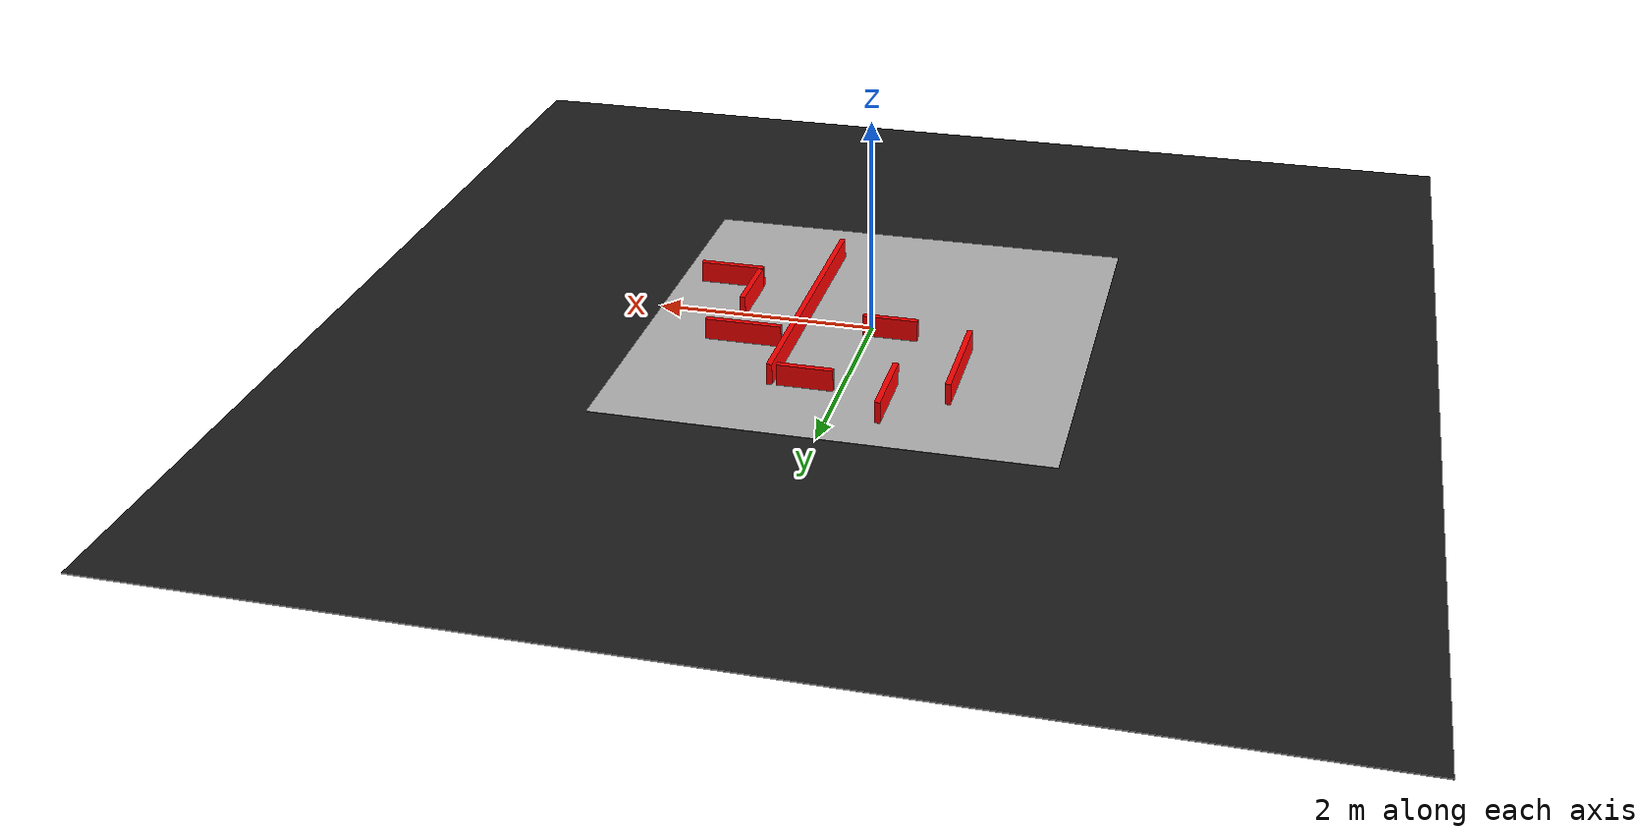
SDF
<sdf version="1.6">
 <world name="default">
  <scene>
   <ambient>0.8 0.8 0.8 1</ambient>
   <shadows>0</shadows>
   <grid>0</grid>
   <background>0.7 0.7 0.7 1</background>
  </scene>
  <include><uri>model://turtlebot3_track/course</uri><pose>0  0 0 0 0 -3.14</pose></include>
  <light name="sun" type="directional">
   <pose>0 0 10 0 -0 0</pose>
   <diffuse>0.8 0.8 0.8 1</diffuse>
   <specular>0.1 0.1 0.1 1</specular>
   <attenuation>
    <range>1000</range>
    <constant>0.9</constant>
    <linear>0.01</linear>
    <quadratic>0.001</quadratic>
   </attenuation>
   <direction>-0.5 0.5 -1</direction>
  </light>
  <model name="ground2">
   <pose>0 0 -0.1 0 -0 0</pose>
   <static>1</static>
   <link name="ground">
    <collision name="ground_coll"><geometry><box><size>8 8 0.01</size></box></geometry></collision>
    <visual name="ground_vis">
     <geometry><box><size>10 10 0.01</size></box></geometry>
     <material>
      <script><uri>file://media/materials/scripts/gazebo.material</uri><name>Gazebo/FlatBlack</name></script>
     </material>
    </visual>
   </link>
  </model>
  <model name="wall">
   <scale>1 1 1</scale>
   <link name="wall_link">
    <pose>-1.91548 -1.005857 0 0 -0 1.5708</pose>
    <velocity>0 0 0 0 -0 0</velocity>
    <acceleration>0 0 0 0 -0 0</acceleration>
    <wrench>0 0 0 0 -0 0</wrench>
   </link>
  </model>
  <model name="wall_1">
   <link name="wall_link">
    <pose>0 0  0 0 -0 1.57</pose>
    <visual name="Wall_1_Visual">
     <geometry><box><size>0.05 0.6 0.4</size></box></geometry>
     <material>
      <ambient>1 0 0 1</ambient>
      <diffuse>1 0 0 1</diffuse>
      <specular>0.1 0.1 0.1 1</specular>
      <emissive>0 0 0 1</emissive>
     </material>
    </visual>
    <collision name="Wall_1_Collision">
     <geometry><box><size>0.05 0.6 0.4</size></box></geometry>
     <surface>
      <friction>
       <ode><mu>1</mu><mu2>1</mu2><fdir1>0 0 0</fdir1><slip1>0</slip1><slip2>0</slip2></ode>
       <torsional>
        <coefficient>1</coefficient>
        <patch_radius>0</patch_radius>
        <surface_radius>0</surface_radius>
        <use_patch_radius>1</use_patch_radius>
        <ode><slip>0</slip></ode>
       </torsional>
      </friction>
      <bounce><restitution_coefficient>0</restitution_coefficient><threshold>1e+06</threshold></bounce>
      <contact>
       <collide_without_contact>0</collide_without_contact>
       <collide_without_contact_bitmask>1</collide_without_contact_bitmask>
       <collide_bitmask>1</collide_bitmask>
       <ode>
        <soft_cfm>0</soft_cfm>
        <soft_erp>0.2</soft_erp>
        <kp>1e+13</kp>
        <kd>1</kd>
        <max_vel>0.01</max_vel>
        <min_depth>0</min_depth>
       </ode>
       <bullet>
        <split_impulse>1</split_impulse>
        <split_impulse_penetration_threshold>-0.01</split_impulse_penetration_threshold>
        <soft_cfm>0</soft_cfm>
        <soft_erp>0.2</soft_erp>
        <kp>1e+13</kp>
        <kd>1</kd>
       </bullet>
      </contact>
     </surface>
    </collision>
   </link>
   <static>1</static>
   <pose>1.49 -0.61 0 0 -0 0</pose>
  </model>
  <model name="wall_2">
   <link name="wall_link">
    <pose>0 0  0 0 -0 1.57</pose>
    <visual name="Wall_2_Visual">
     <geometry><box><size>0.05 2.6 0.4</size></box></geometry>
     <material>
      <ambient>1 0 0 1</ambient>
      <diffuse>1 0 0 1</diffuse>
      <specular>0.1 0.1 0.1 1</specular>
      <emissive>0 0 0 1</emissive>
     </material>
    </visual>
    <collision name="Wall_2_Collision">
     <geometry><box><size>0.05 2.6 0.4</size></box></geometry>
     <surface>
      <friction>
       <ode><mu>1</mu><mu2>1</mu2><fdir1>0 0 0</fdir1><slip1>0</slip1><slip2>0</slip2></ode>
       <torsional>
        <coefficient>1</coefficient>
        <patch_radius>0</patch_radius>
        <surface_radius>0</surface_radius>
        <use_patch_radius>1</use_patch_radius>
        <ode><slip>0</slip></ode>
       </torsional>
      </friction>
      <bounce><restitution_coefficient>0</restitution_coefficient><threshold>1e+06</threshold></bounce>
      <contact>
       <collide_without_contact>0</collide_without_contact>
       <collide_without_contact_bitmask>1</collide_without_contact_bitmask>
       <collide_bitmask>1</collide_bitmask>
       <ode>
        <soft_cfm>0</soft_cfm>
        <soft_erp>0.2</soft_erp>
        <kp>1e+13</kp>
        <kd>1</kd>
        <max_vel>0.01</max_vel>
        <min_depth>0</min_depth>
       </ode>
       <bullet>
        <split_impulse>1</split_impulse>
        <split_impulse_penetration_threshold>-0.01</split_impulse_penetration_threshold>
        <soft_cfm>0</soft_cfm>
        <soft_erp>0.2</soft_erp>
        <kp>1e+13</kp>
        <kd>1</kd>
       </bullet>
      </contact>
     </surface>
    </collision>
   </link>
   <static>1</static>
   <pose>0.62 -0.09 0 0 -0 1.57</pose>
  </model>
  <model name="wall_3">
   <link name="wall_link">
    <pose>0 0  0 0 -0 1.57</pose>
    <visual name="Wall_3_Visual">
     <geometry><box><size>0.05 0.6 0.4</size></box></geometry>
     <material>
      <ambient>1 0 0 1</ambient>
      <diffuse>1 0 0 1</diffuse>
      <specular>0.1 0.1 0.1 1</specular>
      <emissive>0 0 0 1</emissive>
     </material>
    </visual>
    <collision name="Wall_3_Collision">
     <geometry><box><size>0.05 0.6 0.4</size></box></geometry>
     <surface>
      <friction>
       <ode><mu>1</mu><mu2>1</mu2><fdir1>0 0 0</fdir1><slip1>0</slip1><slip2>0</slip2></ode>
       <torsional>
        <coefficient>1</coefficient>
        <patch_radius>0</patch_radius>
        <surface_radius>0</surface_radius>
        <use_patch_radius>1</use_patch_radius>
        <ode><slip>0</slip></ode>
       </torsional>
      </friction>
      <bounce><restitution_coefficient>0</restitution_coefficient><threshold>1e+06</threshold></bounce>
      <contact>
       <collide_without_contact>0</collide_without_contact>
       <collide_without_contact_bitmask>1</collide_without_contact_bitmask>
       <collide_bitmask>1</collide_bitmask>
       <ode>
        <soft_cfm>0</soft_cfm>
        <soft_erp>0.2</soft_erp>
        <kp>1e+13</kp>
        <kd>1</kd>
        <max_vel>0.01</max_vel>
        <min_depth>0</min_depth>
       </ode>
       <bullet>
        <split_impulse>1</split_impulse>
        <split_impulse_penetration_threshold>-0.01</split_impulse_penetration_threshold>
        <soft_cfm>0</soft_cfm>
        <soft_erp>0.2</soft_erp>
        <kp>1e+13</kp>
        <kd>1</kd>
       </bullet>
      </contact>
     </surface>
    </collision>
   </link>
   <static>1</static>
   <pose>1.21 -0.27 0 0 -0 1.57</pose>
  </model>
  <model name="wall_4">
   <link name="wall_link">
    <pose>0 0  0 0 -0 1.57</pose>
    <visual name="Wall_4_Visual">
     <geometry><box><size>0.05 0.7 0.4</size></box></geometry>
     <material>
      <ambient>1 0 0 1</ambient>
      <diffuse>1 0 0 1</diffuse>
      <specular>0.1 0.1 0.1 1</specular>
      <emissive>0 0 0 1</emissive>
     </material>
    </visual>
    <collision name="Wall_4_Collision">
     <geometry><box><size>0.05 0.7 0.4</size></box></geometry>
     <surface>
      <friction>
       <ode><mu>1</mu><mu2>1</mu2><fdir1>0 0 0</fdir1><slip1>0</slip1><slip2>0</slip2></ode>
       <torsional>
        <coefficient>1</coefficient>
        <patch_radius>0</patch_radius>
        <surface_radius>0</surface_radius>
        <use_patch_radius>1</use_patch_radius>
        <ode><slip>0</slip></ode>
       </torsional>
      </friction>
      <bounce><restitution_coefficient>0</restitution_coefficient><threshold>1e+06</threshold></bounce>
      <contact>
       <collide_without_contact>0</collide_without_contact>
       <collide_without_contact_bitmask>1</collide_without_contact_bitmask>
       <collide_bitmask>1</collide_bitmask>
       <ode>
        <soft_cfm>0</soft_cfm>
        <soft_erp>0.2</soft_erp>
        <kp>1e+13</kp>
        <kd>1</kd>
        <max_vel>0.01</max_vel>
        <min_depth>0</min_depth>
       </ode>
       <bullet>
        <split_impulse>1</split_impulse>
        <split_impulse_penetration_threshold>-0.01</split_impulse_penetration_threshold>
        <soft_cfm>0</soft_cfm>
        <soft_erp>0.2</soft_erp>
        <kp>1e+13</kp>
        <kd>1</kd>
       </bullet>
      </contact>
     </surface>
    </collision>
   </link>
   <static>1</static>
   <pose>1.06 0.50 0 0 -0 0</pose>
  </model>
  <model name="wall_5">
   <link name="wall_link">
    <pose>0 0  0 0 -0 1.57</pose>
    <visual name="Wall_5_Visual">
     <geometry><box><size>0.05 0.7 0.4</size></box></geometry>
     <material>
      <ambient>1 0 0 1</ambient>
      <diffuse>1 0 0 1</diffuse>
      <specular>0.1 0.1 0.1 1</specular>
      <emissive>0 0 0 1</emissive>
     </material>
    </visual>
    <collision name="Wall_5_Collision">
     <geometry><box><size>0.05 0.7 0.4</size></box></geometry>
     <surface>
      <friction>
       <ode><mu>1</mu><mu2>1</mu2><fdir1>0 0 0</fdir1><slip1>0</slip1><slip2>0</slip2></ode>
       <torsional>
        <coefficient>1</coefficient>
        <patch_radius>0</patch_radius>
        <surface_radius>0</surface_radius>
        <use_patch_radius>1</use_patch_radius>
        <ode><slip>0</slip></ode>
       </torsional>
      </friction>
      <bounce><restitution_coefficient>0</restitution_coefficient><threshold>1e+06</threshold></bounce>
      <contact>
       <collide_without_contact>0</collide_without_contact>
       <collide_without_contact_bitmask>1</collide_without_contact_bitmask>
       <collide_bitmask>1</collide_bitmask>
       <ode>
        <soft_cfm>0</soft_cfm>
        <soft_erp>0.2</soft_erp>
        <kp>1e+13</kp>
        <kd>1</kd>
        <max_vel>0.01</max_vel>
        <min_depth>0</min_depth>
       </ode>
       <bullet>
        <split_impulse>1</split_impulse>
        <split_impulse_penetration_threshold>-0.01</split_impulse_penetration_threshold>
        <soft_cfm>0</soft_cfm>
        <soft_erp>0.2</soft_erp>
        <kp>1e+13</kp>
        <kd>1</kd>
       </bullet>
      </contact>
     </surface>
    </collision>
   </link>
   <static>1</static>
   <pose>-0.43 1.29 0 0 -0 1.57</pose>
  </model>
  <model name="wall_6">
   <link name="wall_link">
    <pose>0 0  0 0 -0 1.57</pose>
    <visual name="Wall_6_Visual">
     <geometry><box><size>0.05 0.5 0.4</size></box></geometry>
     <material>
      <ambient>1 0 0 1</ambient>
      <diffuse>1 0 0 1</diffuse>
      <specular>0.1 0.1 0.1 1</specular>
      <emissive>0 0 0 1</emissive>
     </material>
    </visual>
    <collision name="Wall_6_Collision">
     <geometry><box><size>0.05 0.5 0.4</size></box></geometry>
     <surface>
      <friction>
       <ode><mu>1</mu><mu2>1</mu2><fdir1>0 0 0</fdir1><slip1>0</slip1><slip2>0</slip2></ode>
       <torsional>
        <coefficient>1</coefficient>
        <patch_radius>0</patch_radius>
        <surface_radius>0</surface_radius>
        <use_patch_radius>1</use_patch_radius>
        <ode><slip>0</slip></ode>
       </torsional>
      </friction>
      <bounce><restitution_coefficient>0</restitution_coefficient><threshold>1e+06</threshold></bounce>
      <contact>
       <collide_without_contact>0</collide_without_contact>
       <collide_without_contact_bitmask>1</collide_without_contact_bitmask>
       <collide_bitmask>1</collide_bitmask>
       <ode>
        <soft_cfm>0</soft_cfm>
        <soft_erp>0.2</soft_erp>
        <kp>1e+13</kp>
        <kd>1</kd>
        <max_vel>0.01</max_vel>
        <min_depth>0</min_depth>
       </ode>
       <bullet>
        <split_impulse>1</split_impulse>
        <split_impulse_penetration_threshold>-0.01</split_impulse_penetration_threshold>
        <soft_cfm>0</soft_cfm>
        <soft_erp>0.2</soft_erp>
        <kp>1e+13</kp>
        <kd>1</kd>
       </bullet>
      </contact>
     </surface>
    </collision>
   </link>
   <static>1</static>
   <pose>0.31 1.18 0 0 -0 0</pose>
  </model>
  <model name="wall_7">
   <link name="wall_link">
    <pose>0 0  0 0 -0 1.57</pose>
    <visual name="Wall_7_Visual">
     <geometry><box><size>0.05 0.5 0.4</size></box></geometry>
     <material>
      <ambient>1 0 0 1</ambient>
      <diffuse>1 0 0 1</diffuse>
      <specular>0.1 0.1 0.1 1</specular>
      <emissive>0 0 0 1</emissive>
     </material>
    </visual>
    <collision name="Wall_7_Collision">
     <geometry><box><size>0.05 0.5 0.4</size></box></geometry>
     <surface>
      <friction>
       <ode><mu>1</mu><mu2>1</mu2><fdir1>0 0 0</fdir1><slip1>0</slip1><slip2>0</slip2></ode>
       <torsional>
        <coefficient>1</coefficient>
        <patch_radius>0</patch_radius>
        <surface_radius>0</surface_radius>
        <use_patch_radius>1</use_patch_radius>
        <ode><slip>0</slip></ode>
       </torsional>
      </friction>
      <bounce><restitution_coefficient>0</restitution_coefficient><threshold>1e+06</threshold></bounce>
      <contact>
       <collide_without_contact>0</collide_without_contact>
       <collide_without_contact_bitmask>1</collide_without_contact_bitmask>
       <collide_bitmask>1</collide_bitmask>
       <ode>
        <soft_cfm>0</soft_cfm>
        <soft_erp>0.2</soft_erp>
        <kp>1e+13</kp>
        <kd>1</kd>
        <max_vel>0.01</max_vel>
        <min_depth>0</min_depth>
       </ode>
       <bullet>
        <split_impulse>1</split_impulse>
        <split_impulse_penetration_threshold>-0.01</split_impulse_penetration_threshold>
        <soft_cfm>0</soft_cfm>
        <soft_erp>0.2</soft_erp>
        <kp>1e+13</kp>
        <kd>1</kd>
       </bullet>
      </contact>
     </surface>
    </collision>
   </link>
   <static>1</static>
   <pose>-0.199 0.123 0 0 -0 0</pose>
  </model>
  <model name="wall_8">
   <link name="wall_link">
    <pose>0 0  0 0 -0 1.57</pose>
    <visual name="Wall_8_Visual">
     <geometry><box><size>0.05 1.0 0.4</size></box></geometry>
     <material>
      <ambient>1 0 0 1</ambient>
      <diffuse>1 0 0 1</diffuse>
      <specular>0.1 0.1 0.1 1</specular>
      <emissive>0 0 0 1</emissive>
     </material>
    </visual>
    <collision name="Wall_8_Collision">
     <geometry><box><size>0.05 1.0 0.4</size></box></geometry>
     <surface>
      <friction>
       <ode><mu>1</mu><mu2>1</mu2><fdir1>0 0 0</fdir1><slip1>0</slip1><slip2>0</slip2></ode>
       <torsional>
        <coefficient>1</coefficient>
        <patch_radius>0</patch_radius>
        <surface_radius>0</surface_radius>
        <use_patch_radius>1</use_patch_radius>
        <ode><slip>0</slip></ode>
       </torsional>
      </friction>
      <bounce><restitution_coefficient>0</restitution_coefficient><threshold>1e+06</threshold></bounce>
      <contact>
       <collide_without_contact>0</collide_without_contact>
       <collide_without_contact_bitmask>1</collide_without_contact_bitmask>
       <collide_bitmask>1</collide_bitmask>
       <ode>
        <soft_cfm>0</soft_cfm>
        <soft_erp>0.2</soft_erp>
        <kp>1e+13</kp>
        <kd>1</kd>
        <max_vel>0.01</max_vel>
        <min_depth>0</min_depth>
       </ode>
       <bullet>
        <split_impulse>1</split_impulse>
        <split_impulse_penetration_threshold>-0.01</split_impulse_penetration_threshold>
        <soft_cfm>0</soft_cfm>
        <soft_erp>0.2</soft_erp>
        <kp>1e+13</kp>
        <kd>1</kd>
       </bullet>
      </contact>
     </surface>
    </collision>
   </link>
   <static>1</static>
   <pose>-0.94 0.70 0 0 -0 -1.57</pose>
  </model>
  <gravity>0 0 -9.8</gravity>
  <magnetic_field>6e-06 2.3e-05 -4.2e-05</magnetic_field>
  <atmosphere type="adiabatic"/>
  <physics name="default_physics" default="0" type="ode">
   <max_step_size>0.001</max_step_size>
   <real_time_factor>1</real_time_factor>
   <real_time_update_rate>1000</real_time_update_rate>
  </physics>
  <spherical_coordinates>
   <surface_model>EARTH_WGS84</surface_model>
   <latitude_deg>0</latitude_deg>
   <longitude_deg>0</longitude_deg>
   <elevation>0</elevation>
   <heading_deg>0</heading_deg>
  </spherical_coordinates>
  <light name="user_point_light_1" type="point">
   <pose>-1.648146 0.604519 1 0 -0 0</pose>
   <diffuse>0.5 0.5 0.5 1</diffuse>
   <specular>0.1 0.1 0.1 1</specular>
   <attenuation>
    <range>20</range>
    <constant>0.5</constant>
    <linear>0.01</linear>
    <quadratic>0.001</quadratic>
   </attenuation>
   <cast_shadows>0</cast_shadows>
   <direction>0 0 -1</direction>
  </light>
  <light name="user_point_light_2" type="point">
   <pose>1.63854 1.69565 1 0 -0 0</pose>
   <diffuse>0.5 0.5 0.5 1</diffuse>
   <specular>0.1 0.1 0.1 1</specular>
   <attenuation>
    <range>20</range>
    <constant>0.5</constant>
    <linear>0.01</linear>
    <quadratic>0.001</quadratic>
   </attenuation>
   <cast_shadows>0</cast_shadows>
   <direction>0 0 -1</direction>
  </light>
  <light name="user_point_light_3" type="point">
   <pose>0.42  -3.31 1 0 -0 0</pose>
   <diffuse>0.5 0.5 0.5 1</diffuse>
   <specular>0.1 0.1 0.1 1</specular>
   <attenuation>
    <range>20</range>
    <constant>0.5</constant>
    <linear>0.01</linear>
    <quadratic>0.001</quadratic>
   </attenuation>
   <cast_shadows>0</cast_shadows>
   <direction>0 0 -1</direction>
  </light>
  <light name="user_point_light_4" type="point">
   <pose>1.21  -1.65 1 0 -0 0</pose>
   <diffuse>0.5 0.5 0.5 1</diffuse>
   <specular>0.1 0.1 0.1 1</specular>
   <attenuation>
    <range>20</range>
    <constant>0.5</constant>
    <linear>0.01</linear>
    <quadratic>0.001</quadratic>
   </attenuation>
   <cast_shadows>0</cast_shadows>
   <direction>0 0 -1</direction>
  </light>
  <light name="user_point_light_5" type="point">
   <pose>2.015 -1.60 1 0 -0 0</pose>
   <diffuse>0.5 0.5 0.5 1</diffuse>
   <specular>0.1 0.1 0.1 1</specular>
   <attenuation>
    <range>20</range>
    <constant>0.5</constant>
    <linear>0.01</linear>
    <quadratic>0.001</quadratic>
   </attenuation>
   <cast_shadows>0</cast_shadows>
   <direction>0 0 -1</direction>
  </light>
  <light name="user_point_light_6" type="point">
   <pose>1.669941 -0.715702 1 0 -0 0</pose>
   <diffuse>0.5 0.5 0.5 1</diffuse>
   <specular>0.1 0.1 0.1 1</specular>
   <attenuation>
    <range>20</range>
    <constant>0.5</constant>
    <linear>0.01</linear>
    <quadratic>0.001</quadratic>
   </attenuation>
   <cast_shadows>0</cast_shadows>
   <direction>0 0 -1</direction>
  </light>
  <light name="user_point_light_7" type="point">
   <pose>0.834601 -0.911 1 0 -0 0</pose>
   <diffuse>0.5 0.5 0.5 1</diffuse>
   <specular>0.1 0.1 0.1 1</specular>
   <attenuation>
    <range>20</range>
    <constant>0.5</constant>
    <linear>0.01</linear>
    <quadratic>0.001</quadratic>
   </attenuation>
   <cast_shadows>0</cast_shadows>
   <direction>0 0 -1</direction>
  </light>
  <light name="user_point_light_8" type="point">
   <pose>0.933 0.28 1 0 -0 0</pose>
   <diffuse>0.5 0.5 0.5 1</diffuse>
   <specular>0.1 0.1 0.1 1</specular>
   <attenuation>
    <range>20</range>
    <constant>0.5</constant>
    <linear>0.01</linear>
    <quadratic>0.001</quadratic>
   </attenuation>
   <cast_shadows>0</cast_shadows>
   <direction>0 0 -1</direction>
  </light>
  <light name="user_point_light_9" type="point">
   <pose>1.66 0.24 1 0 -0 0</pose>
   <diffuse>0.5 0.5 0.5 1</diffuse>
   <specular>0.1 0.1 0.1 1</specular>
   <attenuation>
    <range>20</range>
    <constant>0.5</constant>
    <linear>0.01</linear>
    <quadratic>0.001</quadratic>
   </attenuation>
   <cast_shadows>0</cast_shadows>
   <direction>0 0 -1</direction>
  </light>
  <light name="user_point_light_10" type="point">
   <pose>1.68 1.20 1 0 -0 0</pose>
   <diffuse>0.5 0.5 0.5 1</diffuse>
   <specular>0.1 0.1 0.1 1</specular>
   <attenuation>
    <range>20</range>
    <constant>0.5</constant>
    <linear>0.01</linear>
    <quadratic>0.001</quadratic>
   </attenuation>
   <cast_shadows>0</cast_shadows>
   <direction>0 0 -1</direction>
  </light>
  <light name="user_point_light_11" type="point">
   <pose>0.065163 1.42 1 0 -0 0</pose>
   <diffuse>0.5 0.5 0.5 1</diffuse>
   <specular>0.1 0.1 0.1 1</specular>
   <attenuation>
    <range>20</range>
    <constant>0.5</constant>
    <linear>0.01</linear>
    <quadratic>0.001</quadratic>
   </attenuation>
   <cast_shadows>0</cast_shadows>
   <direction>0 0 -1</direction>
  </light>
  <light name="user_point_light_12" type="point">
   <pose>-0.167 0.44 1 0 -0 0</pose>
   <diffuse>0.5 0.5 0.5 1</diffuse>
   <specular>0.1 0.1 0.1 1</specular>
   <attenuation>
    <range>20</range>
    <constant>0.5</constant>
    <linear>0.01</linear>
    <quadratic>0.001</quadratic>
   </attenuation>
   <cast_shadows>0</cast_shadows>
   <direction>0 0 -1</direction>
  </light>
  <light name="user_point_light_13" type="point">
   <pose>-0.54 0.44 1 0 -0 0</pose>
   <diffuse>0.5 0.5 0.5 1</diffuse>
   <specular>0.1 0.1 0.1 1</specular>
   <attenuation>
    <range>20</range>
    <constant>0.5</constant>
    <linear>0.01</linear>
    <quadratic>0.001</quadratic>
   </attenuation>
   <cast_shadows>0</cast_shadows>
   <direction>0 0 -1</direction>
  </light>
  <light name="user_point_light_14" type="point">
   <pose>-0.76 1.416 1 0 -0 0</pose>
   <diffuse>0.5 0.5 0.5 1</diffuse>
   <specular>0.1 0.1 0.1 1</specular>
   <attenuation>
    <range>20</range>
    <constant>0.5</constant>
    <linear>0.01</linear>
    <quadratic>0.001</quadratic>
   </attenuation>
   <cast_shadows>0</cast_shadows>
   <direction>0 0 -1</direction>
  </light>
 </world>
</sdf>

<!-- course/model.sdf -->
<sdf version="1.6">
  <model name="course">
    <static>true</static>
    <link name="course_link">
      <collision name="course_collision">
        <geometry>
          <plane>
            <normal>0 0 1</normal>
            <size>4 4</size>
          </plane>
        </geometry>
        <surface>
          <friction>
            <ode>
              <mu>100</mu>
              <mu2>50</mu2>
            </ode>
          </friction>
        </surface>
      </collision>

      <visual name="course_visual">
        <cast_shadows>false</cast_shadows>
        <geometry>
          <plane>
            <normal>0 0 1</normal>
            <size>4 4</size>
          </plane>
        </geometry>
        <material>
          <lighting>false</lighting> <!-- Ignore lighting -->
          <emissive>1 1 1 1</emissive> <!-- Keep texture fully bright -->
          <script>
            <uri>model://turtlebot3_track/course/materials/scripts</uri>
            <uri>model://turtlebot3_track/course/materials/textures</uri>
            <name>course</name>
          </script>
        </material>
      </visual>
    </link>
  </model>
</sdf>
